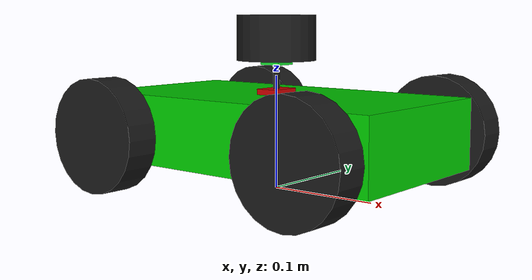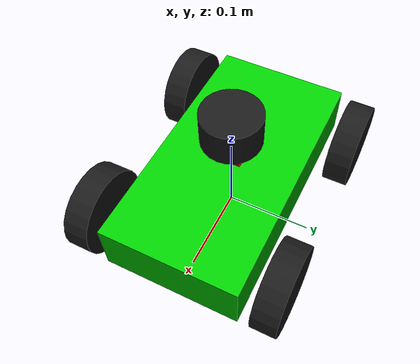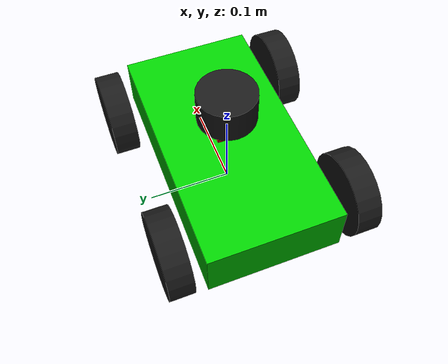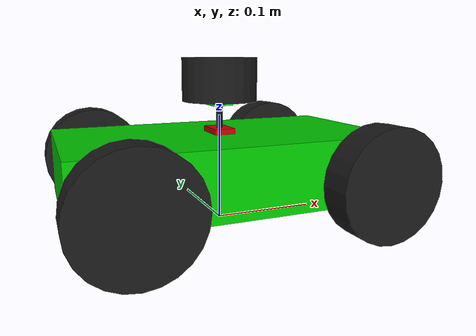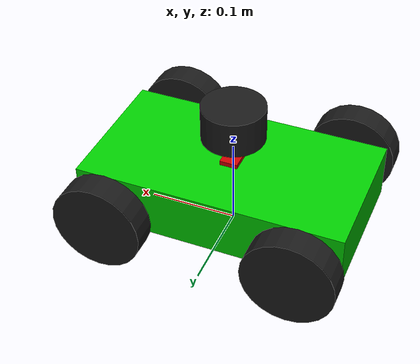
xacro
<?xml version="1.0"?>
<robot xmlns:xacro="http://www.ros.org/wiki/xacro"  name="dvt_robot">

    <xacro:include filename="robot_core.xacro"/>
    <xacro:include filename="ros2_control.xacro"/>
    <xacro:include filename="lidar.xacro"/>
    <xacro:include filename="imu.xacro"/>
    <xacro:include filename="uwb_tag.xacro"/>

</robot>

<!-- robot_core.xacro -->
<robot name="amr_ackermann" xmlns:xacro="http://www.ros.org/wiki/xacro">

  <xacro:include filename="inertial.xacro"/>

  <!-- ─── Properties ─── -->
  <xacro:property name="chassis_mass"     value="2.0"/>
  <xacro:property name="chassis_length"   value="0.297"/>
  <xacro:property name="chassis_width"    value="0.158"/>
  <xacro:property name="chassis_height"   value="0.062"/>
  <xacro:property name="ground_clearance" value="0.022"/>

  <xacro:property name="wheel_mass"       value="0.15"/>
  <xacro:property name="wheel_radius"     value="0.05"/>
  <xacro:property name="wheel_width"      value="0.029"/>
  <xacro:property name="wheelbase"        value="0.21"/>
  <xacro:property name="track_width"      value="0.217"/>

  <xacro:property name="steering_limit"    value="0.52"/>
  <xacro:property name="steering_effort"   value="10.0"/>
  <xacro:property name="steering_velocity" value="1.0"/>
  <xacro:property name="steer_link_mass"   value="0.01"/>

  <xacro:property name="chassis_z_offset" value="${ground_clearance + chassis_height/2}"/>
  <xacro:property name="wheel_z_offset"   value="${wheel_radius - chassis_z_offset}"/>

  <!-- ─── Materials ─── -->
  <material name="dark_grey">
    <color rgba="0.2 0.2 0.2 1.0"/>
  </material>
  <material name="green">
    <color rgba="0.0 0.8 0.0 1.0"/>
  </material>
  <material name="black">
    <color rgba="0.1 0.1 0.1 1.0"/>
  </material>

  <!-- ─── Rear wheel macro ─── -->
  <xacro:macro name="rear_wheel" params="name y mirrored">
    <link name="${name}_wheel">
      <visual>
        <geometry>
          <cylinder radius="${wheel_radius}" length="${wheel_width}"/>
        </geometry>
        <material name="black"/>
      </visual>
      <collision>
        <geometry>
          <cylinder radius="${wheel_radius}" length="${wheel_width}"/>
        </geometry>
      </collision>
      <xacro:inertial_cylinder mass="${wheel_mass}" radius="${wheel_radius}" length="${wheel_width}">
        <origin xyz="0 0 0" rpy="0 0 0"/>
      </xacro:inertial_cylinder>
    </link>

    <joint name="${name}_wheel_joint" type="continuous">
      <parent link="base_link"/>
      <child  link="${name}_wheel"/>
      <origin xyz="${-wheelbase/2} ${y} ${wheel_z_offset}" rpy="${-pi/2 + pi*mirrored} 0 0"/>
      <axis xyz="0 0 1"/>
    </joint>

    <!-- Ma sát bánh dẫn động — cần cao để tạo lực đẩy robot -->
    <gazebo reference="${name}_wheel">
      <mu>2.2</mu>
      <mu2>2.2</mu2>
      <kp>1e6</kp>
      <kd>1.0</kd>
      <minDepth>0.001</minDepth>
    </gazebo>
  </xacro:macro>

  <!-- ─── Front wheel macro (steer link + steer joint + wheel link + wheel joint) ─── -->
  <xacro:macro name="front_wheel" params="name y mirrored">
    <!-- Steering pivot link (virtual, nhỏ) -->
    <link name="front_${name}_steer_link">
      <xacro:inertial_sphere mass="${steer_link_mass}" radius="0.01">
        <origin xyz="0 0 0" rpy="0 0 0"/>
      </xacro:inertial_sphere>
    </link>

    <!-- Steering revolute joint -->
    <joint name="front_${name}_steer_joint" type="revolute">
      <parent link="base_link"/>
      <child  link="front_${name}_steer_link"/>
      <origin xyz="${wheelbase/2} ${y} 0" rpy="0 0 0"/>
      <axis xyz="0 0 1"/>
      <limit lower="${-steering_limit}" upper="${steering_limit}"
             effort="${steering_effort}" velocity="${steering_velocity}"/>
    </joint>

    <!-- Wheel link -->
    <link name="front_${name}_wheel">
      <visual>
        <geometry>
          <cylinder radius="${wheel_radius}" length="${wheel_width}"/>
        </geometry>
        <material name="black"/>
      </visual>
      <collision>
        <geometry>
          <cylinder radius="${wheel_radius}" length="${wheel_width}"/>
        </geometry>
      </collision>
      <xacro:inertial_cylinder mass="${wheel_mass}" radius="${wheel_radius}" length="${wheel_width}">
        <origin xyz="0 0 0" rpy="0 0 0"/>
      </xacro:inertial_cylinder>
    </link>

    <!-- Wheel continuous joint -->
    <joint name="front_${name}_wheel_joint" type="continuous">
      <parent link="front_${name}_steer_link"/>
      <child  link="front_${name}_wheel"/>
      <origin xyz="0 0 ${wheel_z_offset}" rpy="${-pi/2 + pi*mirrored} 0 0"/>
      <axis xyz="0 0 1"/>
    </joint>

    <!-- Ma sát bánh trước — đủ để giữ hướng, không quá cao -->
    <gazebo reference="front_${name}_wheel">
      <mu>1.6</mu>
      <mu2>1.1</mu2>
      <kp>1e6</kp>
      <kd>1.0</kd>
      <minDepth>0.001</minDepth>
    </gazebo>
  </xacro:macro>

  <!-- ─── Links ─── -->
  <link name="base_footprint"/>

  <link name="base_link">
    <visual>
      <geometry>
        <box size="${chassis_length} ${chassis_width} ${chassis_height}"/>
      </geometry>
      <material name="green"/>
    </visual>
    <collision>
      <geometry>
        <box size="${chassis_length} ${chassis_width} ${chassis_height}"/>
      </geometry>
    </collision>
    <xacro:inertial_box mass="${chassis_mass}" x="${chassis_length}" y="${chassis_width}" z="${chassis_height}">
      <origin xyz="0 0 0" rpy="0 0 0"/>
    </xacro:inertial_box>
  </link>

  <gazebo reference="base_link">
    <material>Gazebo/Green</material>
  </gazebo>

  <!-- ─── Joints ─── -->
  <joint name="base_footprint_joint" type="fixed">
    <parent link="base_footprint"/>
    <child  link="base_link"/>
    <origin xyz="0 0 ${chassis_z_offset}" rpy="0 0 0"/>
  </joint>

  <xacro:rear_wheel  name="rear_left"  y="${track_width/2}"  mirrored="0"/>
  <xacro:rear_wheel  name="rear_right" y="${-track_width/2}" mirrored="0"/>
  <xacro:front_wheel name="left"       y="${track_width/2}"  mirrored="0"/>
  <xacro:front_wheel name="right"      y="${-track_width/2}" mirrored="1"/>

</robot>

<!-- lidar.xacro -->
<robot xmlns:xacro="http://www.ros.org/wiki/xacro">

  <!-- ─── Properties ─── -->
  <xacro:property name="lidar_mass"   value="0.17"/>
  <xacro:property name="lidar_radius" value="0.035"/>
  <xacro:property name="lidar_height" value="0.040"/>

  <!-- ─── Links ─── -->
  <link name="lidar_frame">
    <visual>
      <geometry>
        <cylinder radius="${lidar_radius}" length="${lidar_height}"/>
      </geometry>
      <material name="black"/>
    </visual>
    <collision>
      <geometry>
        <cylinder radius="${lidar_radius}" length="${lidar_height}"/>
      </geometry>
    </collision>
    <xacro:inertial_cylinder mass="${lidar_mass}" radius="${lidar_radius}" length="${lidar_height}">
      <origin xyz="0 0 0" rpy="0 0 0"/>
    </xacro:inertial_cylinder>
  </link>

  <!-- ─── Joints ─── -->
  <joint name="laser_joint" type="fixed">
    <parent link="base_link"/>
    <child  link="lidar_frame"/>
    <origin xyz="0 0 ${chassis_height/2 + 0.03 + lidar_height/2}" rpy="0 0 0"/>
  </joint>

  <!-- ─── Gazebo sensor ─── -->
  <gazebo reference="lidar_frame">
    <sensor name="lidar" type="gpu_lidar">
      <pose>0 0 0 0 0 0</pose>
      <topic>scan</topic>
      <update_rate>10</update_rate>
      <always_on>1</always_on>
      <visualize>true</visualize>
      <lidar>
        <scan>
          <horizontal>
            <samples>360</samples>
            <resolution>1</resolution>
            <min_angle>-3.14159</min_angle>
            <max_angle>3.14159</max_angle>
          </horizontal>
          <vertical>
            <samples>1</samples>
            <resolution>0.1</resolution>
            <min_angle>0.</min_angle>
            <max_angle>0.</max_angle>
          </vertical>
        </scan>
        <range>
          <min>0.08</min>
          <max>8.0</max>
          <resolution>0.01</resolution>
        </range>
        <noise>
          <type>gaussian</type>
          <mean>0.0</mean>
          <stddev>0.01</stddev>
        </noise>
      </lidar>
      <gz_frame_id>lidar_frame</gz_frame_id>
    </sensor>
  </gazebo>

  <gazebo>
    <plugin filename="gz-sim-sensors-system"
            name="gz::sim::systems::Sensors">
      <render_engine>ogre2</render_engine>
    </plugin>
  </gazebo>

</robot>

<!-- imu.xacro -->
<robot xmlns:xacro="http://www.ros.org/wiki/xacro">

  <!-- ─── Materials ─── -->
  <material name="red">
    <color rgba="0.8 0.0 0.0 1.0"/>
  </material>

  <!-- ─── Properties ─── -->
  <xacro:property name="imu_length"    value="0.030"/>  <!-- 3 cm -->
  <xacro:property name="imu_width"     value="0.020"/>  <!-- 2 cm -->
  <xacro:property name="imu_thickness" value="0.005"/>  <!-- 0.5 cm -->
  <xacro:property name="imu_mass"      value="0.001"/>

  <!-- ─── Link ─── -->
  <link name="imu_frame">
    <visual>
      <origin xyz="0 0 0" rpy="0 0 ${pi/2}"/>
      <geometry>
        <box size="${imu_length} ${imu_width} ${imu_thickness}"/>
      </geometry>
      <material name="red"/>
    </visual>
    <collision>
      <geometry>
        <box size="${imu_length} ${imu_width} ${imu_thickness}"/>
      </geometry>
    </collision>
    <xacro:inertial_box mass="${imu_mass}"
                        x="${imu_length}" y="${imu_width}" z="${imu_thickness}">
      <origin xyz="0 0 0" rpy="0 0 0"/>
    </xacro:inertial_box>
  </link>

  <!-- ─── Joint: tâm chassis → tâm IMU ─── -->
  <!-- Đặt sát mặt trên chassis, tại tâm xe (x=0 y=0) -->
  <joint name="imu_joint" type="fixed">
    <parent link="base_link"/>
    <child  link="imu_frame"/>
    <origin xyz="0 0 ${chassis_height/2 + imu_thickness/2}" rpy="0 0 0"/>
  </joint>

  <!-- ─── Gazebo sensor ─── -->
  <gazebo reference="imu_frame">
    <sensor name="imu_sensor" type="imu">
      <always_on>1</always_on>
      <update_rate>100</update_rate>
      <topic>imu</topic>
      <gz_frame_id>imu_frame</gz_frame_id>
      <imu>
        <angular_velocity>
          <x><noise type="gaussian"><mean>0</mean><stddev>0.005</stddev></noise></x>
          <y><noise type="gaussian"><mean>0</mean><stddev>0.005</stddev></noise></y>
          <z><noise type="gaussian"><mean>0</mean><stddev>0.005</stddev></noise></z>
        </angular_velocity>
        <linear_acceleration>
          <x><noise type="gaussian"><mean>0</mean><stddev>0.020</stddev></noise></x>
          <y><noise type="gaussian"><mean>0</mean><stddev>0.020</stddev></noise></y>
          <z><noise type="gaussian"><mean>0</mean><stddev>0.020</stddev></noise></z>
        </linear_acceleration>
      </imu>
    </sensor>
  </gazebo>

  <gazebo>
    <plugin filename="gz-sim-imu-system"
            name="gz::sim::systems::Imu"/>
  </gazebo>

</robot>

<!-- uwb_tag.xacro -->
<robot xmlns:xacro="http://www.ros.org/wiki/xacro">

  <material name="uwb_green">
    <color rgba="0.1 0.9 0.2 1.0"/>
  </material>

  <xacro:property name="uwb_mast_height" value="0.03"/>
  <xacro:property name="uwb_tag_size"    value="0.02"/>

  <link name="uwb_tag">
    <visual>
      <origin xyz="0 0 ${-uwb_mast_height/2}" rpy="0 0 0"/>
      <geometry>
        <cylinder radius="0.003" length="${uwb_mast_height}"/>
      </geometry>
      <material name="black"/>
    </visual>
    <visual>
      <origin xyz="0 0 0" rpy="0 0 0"/>
      <geometry>
        <box size="${uwb_tag_size} ${uwb_tag_size} 0.008"/>
      </geometry>
      <material name="uwb_green"/>
    </visual>
    <xacro:inertial_box mass="0.001" x="${uwb_tag_size}" y="${uwb_tag_size}" z="0.008">
      <origin xyz="0 0 0" rpy="0 0 0"/>
    </xacro:inertial_box>
  </link>

  <!-- Giữa nóc chassis, trên cột 3cm: z sàn = chassis_z_offset
       + chassis_height/2 + mast = 0.022+0.031+0.031+0.03 ≈ 0.114 -->
  <joint name="uwb_tag_joint" type="fixed">
    <parent link="base_link"/>
    <child  link="uwb_tag"/>
    <origin xyz="0 0 ${chassis_height/2 + uwb_mast_height}" rpy="0 0 0"/>
  </joint>

  <gazebo reference="uwb_tag">
    <material>
      <ambient>0.1 0.9 0.2 1</ambient>
      <diffuse>0.1 0.9 0.2 1</diffuse>
    </material>
  </gazebo>

  <gazebo>
    <plugin filename="gz-sim-odometry-publisher-system"
            name="gz::sim::systems::OdometryPublisher">
      <odom_topic>/ground_truth/odom</odom_topic>
      <odom_frame>ground_truth_origin</odom_frame>
      <robot_base_frame>base_footprint_gt</robot_base_frame>
      <odom_publish_frequency>50</odom_publish_frequency>
    </plugin>
  </gazebo>

</robot>
